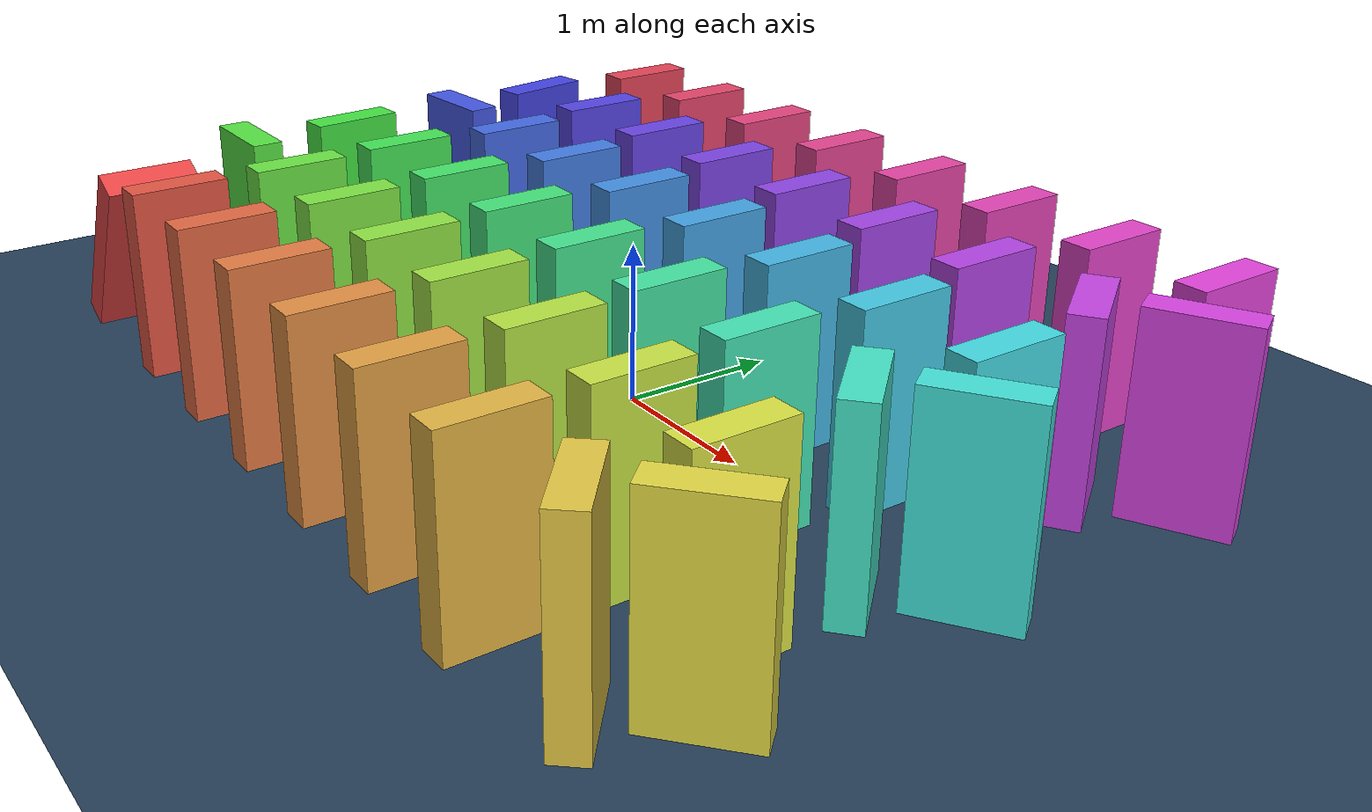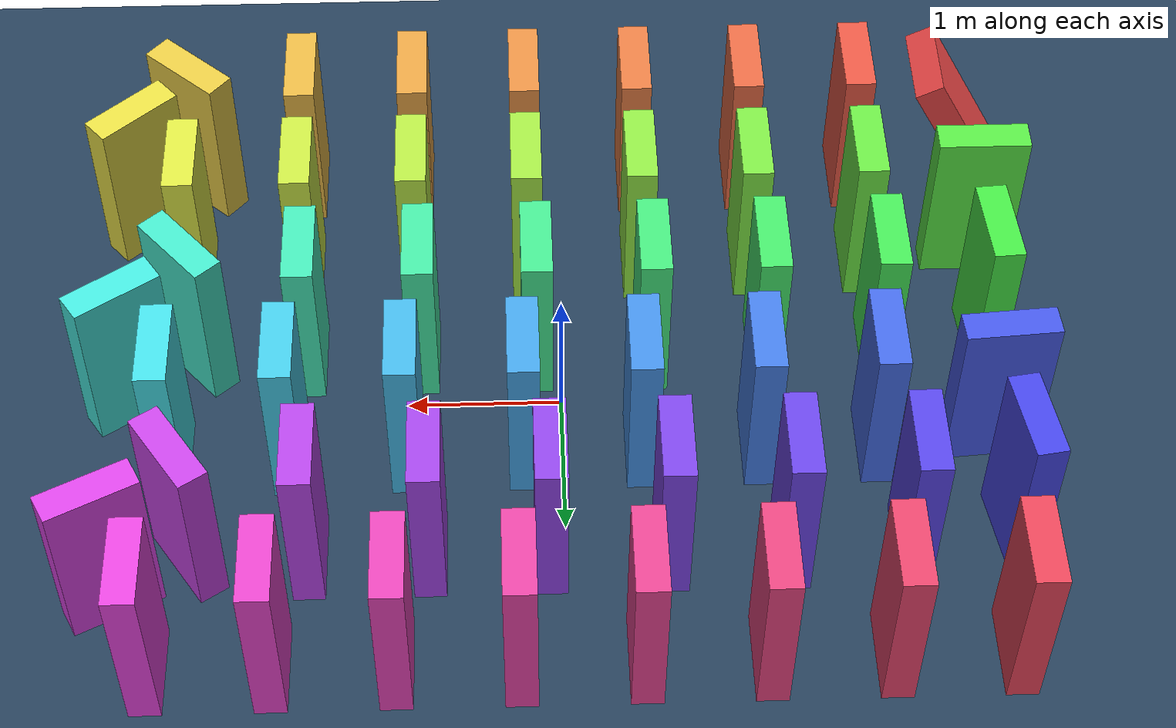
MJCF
<mujoco>
  <visual>
    <headlight diffuse="0.6 0.6 0.6" ambient="0.1 0.1 0.1" specular="0 0 0"/>
    <rgba haze="0.15 0.25 0.35 1"/>
    <global azimuth="120" elevation="-20"/>
  </visual>
  <asset>
    <texture type="skybox" builtin="gradient" rgb1="0.3 0.5 0.7" rgb2="0 0 0" width="512" height="3072"/>
    <texture type="2d" name="groundplane" builtin="checker" mark="edge" rgb1="0.2 0.3 0.4" rgb2="0.1 0.2 0.3" markrgb="0.8 0.8 0.8" width="300" height="300"/>
    <material name="groundplane" texture="groundplane" texuniform="true" texrepeat="5 5" reflectance="0.2"/>
  </asset>
  <worldbody>
    <light pos="0 0 1.5" dir="0 0 -1" directional="true"/>
    <geom name="floor" size="0 0 0.05" type="plane" material="groundplane"/>
    <body name="trigger" pos="-2.8000 -2.0000 0.5767" euler="0 28.0 0.0">
      <geom type="box" size="0.1000 0.3000 0.6000" rgba="0.900 0.270 0.270 1"/>
      <freejoint/>
    </body>
    <body name="domino_001" pos="-2.0500 -2.0000 0.6000" euler="0 0.0 0.0">
      <geom type="box" size="0.1000 0.3000 0.6000" rgba="0.900 0.344 0.270 1"/>
      <freejoint/>
    </body>
    <body name="domino_002" pos="-1.3000 -2.0000 0.6000" euler="0 0.0 0.0">
      <geom type="box" size="0.1000 0.3000 0.6000" rgba="0.900 0.418 0.270 1"/>
      <freejoint/>
    </body>
    <body name="domino_003" pos="-0.5500 -2.0000 0.6000" euler="0 0.0 0.0">
      <geom type="box" size="0.1000 0.3000 0.6000" rgba="0.900 0.492 0.270 1"/>
      <freejoint/>
    </body>
    <body name="domino_004" pos="0.2000 -2.0000 0.6000" euler="0 0.0 0.0">
      <geom type="box" size="0.1000 0.3000 0.6000" rgba="0.900 0.566 0.270 1"/>
      <freejoint/>
    </body>
    <body name="domino_005" pos="0.9500 -2.0000 0.6000" euler="0 0.0 0.0">
      <geom type="box" size="0.1000 0.3000 0.6000" rgba="0.900 0.640 0.270 1"/>
      <freejoint/>
    </body>
    <body name="domino_006" pos="1.7000 -2.0000 0.6000" euler="0 0.0 0.0">
      <geom type="box" size="0.1000 0.3000 0.6000" rgba="0.900 0.714 0.270 1"/>
      <freejoint/>
    </body>
    <body name="domino_007" pos="2.4500 -2.0000 0.6000" euler="0 0.0 48.8">
      <geom type="box" size="0.1000 0.3000 0.6000" rgba="0.900 0.788 0.270 1"/>
      <freejoint/>
    </body>
    <body name="domino_008" pos="2.8000 -1.6000 0.6000" euler="0 0.0 131.2">
      <geom type="box" size="0.1000 0.3000 0.6000" rgba="0.900 0.862 0.270 1"/>
      <freejoint/>
    </body>
    <body name="domino_009" pos="2.4500 -1.2000 0.6000" euler="0 0.0 180.0">
      <geom type="box" size="0.1000 0.3000 0.6000" rgba="0.864 0.900 0.270 1"/>
      <freejoint/>
    </body>
    <body name="domino_010" pos="1.7000 -1.2000 0.6000" euler="0 0.0 180.0">
      <geom type="box" size="0.1000 0.3000 0.6000" rgba="0.790 0.900 0.270 1"/>
      <freejoint/>
    </body>
    <body name="domino_011" pos="0.9500 -1.2000 0.6000" euler="0 0.0 180.0">
      <geom type="box" size="0.1000 0.3000 0.6000" rgba="0.716 0.900 0.270 1"/>
      <freejoint/>
    </body>
    <body name="domino_012" pos="0.2000 -1.2000 0.6000" euler="0 0.0 180.0">
      <geom type="box" size="0.1000 0.3000 0.6000" rgba="0.642 0.900 0.270 1"/>
      <freejoint/>
    </body>
    <body name="domino_013" pos="-0.5500 -1.2000 0.6000" euler="0 0.0 180.0">
      <geom type="box" size="0.1000 0.3000 0.6000" rgba="0.568 0.900 0.270 1"/>
      <freejoint/>
    </body>
    <body name="domino_014" pos="-1.3000 -1.2000 0.6000" euler="0 0.0 180.0">
      <geom type="box" size="0.1000 0.3000 0.6000" rgba="0.494 0.900 0.270 1"/>
      <freejoint/>
    </body>
    <body name="domino_015" pos="-2.0500 -1.2000 0.6000" euler="0 0.0 180.0">
      <geom type="box" size="0.1000 0.3000 0.6000" rgba="0.420 0.900 0.270 1"/>
      <freejoint/>
    </body>
    <body name="domino_016" pos="-2.8000 -1.2000 0.6000" euler="0 0.0 90.0">
      <geom type="box" size="0.1000 0.3000 0.6000" rgba="0.346 0.900 0.270 1"/>
      <freejoint/>
    </body>
    <body name="domino_017" pos="-2.8000 -0.4500 0.6000" euler="0 0.0 4.1">
      <geom type="box" size="0.1000 0.3000 0.6000" rgba="0.272 0.900 0.270 1"/>
      <freejoint/>
    </body>
    <body name="domino_018" pos="-2.1000 -0.4000 0.6000" euler="0 0.0 0.0">
      <geom type="box" size="0.1000 0.3000 0.6000" rgba="0.270 0.900 0.342 1"/>
      <freejoint/>
    </body>
    <body name="domino_019" pos="-1.3500 -0.4000 0.6000" euler="0 0.0 0.0">
      <geom type="box" size="0.1000 0.3000 0.6000" rgba="0.270 0.900 0.416 1"/>
      <freejoint/>
    </body>
    <body name="domino_020" pos="-0.6000 -0.4000 0.6000" euler="0 0.0 0.0">
      <geom type="box" size="0.1000 0.3000 0.6000" rgba="0.270 0.900 0.490 1"/>
      <freejoint/>
    </body>
    <body name="domino_021" pos="0.1500 -0.4000 0.6000" euler="0 0.0 0.0">
      <geom type="box" size="0.1000 0.3000 0.6000" rgba="0.270 0.900 0.565 1"/>
      <freejoint/>
    </body>
    <body name="domino_022" pos="0.9000 -0.4000 0.6000" euler="0 0.0 0.0">
      <geom type="box" size="0.1000 0.3000 0.6000" rgba="0.270 0.900 0.639 1"/>
      <freejoint/>
    </body>
    <body name="domino_023" pos="1.6500 -0.4000 0.6000" euler="0 0.0 0.0">
      <geom type="box" size="0.1000 0.3000 0.6000" rgba="0.270 0.900 0.713 1"/>
      <freejoint/>
    </body>
    <body name="domino_024" pos="2.4000 -0.4000 0.6000" euler="0 0.0 41.2">
      <geom type="box" size="0.1000 0.3000 0.6000" rgba="0.270 0.900 0.787 1"/>
      <freejoint/>
    </body>
    <body name="domino_025" pos="2.8000 -0.0500 0.6000" euler="0 0.0 123.7">
      <geom type="box" size="0.1000 0.3000 0.6000" rgba="0.270 0.900 0.861 1"/>
      <freejoint/>
    </body>
    <body name="domino_026" pos="2.5000 0.4000 0.6000" euler="0 0.0 180.0">
      <geom type="box" size="0.1000 0.3000 0.6000" rgba="0.270 0.865 0.900 1"/>
      <freejoint/>
    </body>
    <body name="domino_027" pos="1.7500 0.4000 0.6000" euler="0 0.0 180.0">
      <geom type="box" size="0.1000 0.3000 0.6000" rgba="0.270 0.791 0.900 1"/>
      <freejoint/>
    </body>
    <body name="domino_028" pos="1.0000 0.4000 0.6000" euler="0 0.0 180.0">
      <geom type="box" size="0.1000 0.3000 0.6000" rgba="0.270 0.717 0.900 1"/>
      <freejoint/>
    </body>
    <body name="domino_029" pos="0.2500 0.4000 0.6000" euler="0 0.0 180.0">
      <geom type="box" size="0.1000 0.3000 0.6000" rgba="0.270 0.643 0.900 1"/>
      <freejoint/>
    </body>
    <body name="domino_030" pos="-0.5000 0.4000 0.6000" euler="0 0.0 180.0">
      <geom type="box" size="0.1000 0.3000 0.6000" rgba="0.270 0.569 0.900 1"/>
      <freejoint/>
    </body>
    <body name="domino_031" pos="-1.2500 0.4000 0.6000" euler="0 0.0 180.0">
      <geom type="box" size="0.1000 0.3000 0.6000" rgba="0.270 0.495 0.900 1"/>
      <freejoint/>
    </body>
    <body name="domino_032" pos="-2.0000 0.4000 0.6000" euler="0 0.0 180.0">
      <geom type="box" size="0.1000 0.3000 0.6000" rgba="0.270 0.421 0.900 1"/>
      <freejoint/>
    </body>
    <body name="domino_033" pos="-2.7500 0.4000 0.6000" euler="0 0.0 94.1">
      <geom type="box" size="0.1000 0.3000 0.6000" rgba="0.270 0.347 0.900 1"/>
      <freejoint/>
    </body>
    <body name="domino_034" pos="-2.8000 1.1000 0.6000" euler="0 0.0 8.7">
      <geom type="box" size="0.1000 0.3000 0.6000" rgba="0.270 0.273 0.900 1"/>
      <freejoint/>
    </body>
    <body name="domino_035" pos="-2.1500 1.2000 0.6000" euler="0 0.0 0.0">
      <geom type="box" size="0.1000 0.3000 0.6000" rgba="0.341 0.270 0.900 1"/>
      <freejoint/>
    </body>
    <body name="domino_036" pos="-1.4000 1.2000 0.6000" euler="0 0.0 0.0">
      <geom type="box" size="0.1000 0.3000 0.6000" rgba="0.415 0.270 0.900 1"/>
      <freejoint/>
    </body>
    <body name="domino_037" pos="-0.6500 1.2000 0.6000" euler="0 0.0 0.0">
      <geom type="box" size="0.1000 0.3000 0.6000" rgba="0.489 0.270 0.900 1"/>
      <freejoint/>
    </body>
    <body name="domino_038" pos="0.1000 1.2000 0.6000" euler="0 0.0 0.0">
      <geom type="box" size="0.1000 0.3000 0.6000" rgba="0.563 0.270 0.900 1"/>
      <freejoint/>
    </body>
    <body name="domino_039" pos="0.8500 1.2000 0.6000" euler="0 0.0 0.0">
      <geom type="box" size="0.1000 0.3000 0.6000" rgba="0.637 0.270 0.900 1"/>
      <freejoint/>
    </body>
    <body name="domino_040" pos="1.6000 1.2000 0.6000" euler="0 0.0 0.0">
      <geom type="box" size="0.1000 0.3000 0.6000" rgba="0.711 0.270 0.900 1"/>
      <freejoint/>
    </body>
    <body name="domino_041" pos="2.3500 1.2000 0.6000" euler="0 0.0 33.7">
      <geom type="box" size="0.1000 0.3000 0.6000" rgba="0.785 0.270 0.900 1"/>
      <freejoint/>
    </body>
    <body name="domino_042" pos="2.8000 1.5000 0.6000" euler="0 0.0 116.6">
      <geom type="box" size="0.1000 0.3000 0.6000" rgba="0.859 0.270 0.900 1"/>
      <freejoint/>
    </body>
    <body name="domino_043" pos="2.5500 2.0000 0.6000" euler="0 0.0 180.0">
      <geom type="box" size="0.1000 0.3000 0.6000" rgba="0.900 0.270 0.867 1"/>
      <freejoint/>
    </body>
    <body name="domino_044" pos="1.8000 2.0000 0.6000" euler="0 0.0 180.0">
      <geom type="box" size="0.1000 0.3000 0.6000" rgba="0.900 0.270 0.793 1"/>
      <freejoint/>
    </body>
    <body name="domino_045" pos="1.0500 2.0000 0.6000" euler="0 0.0 180.0">
      <geom type="box" size="0.1000 0.3000 0.6000" rgba="0.900 0.270 0.719 1"/>
      <freejoint/>
    </body>
    <body name="domino_046" pos="0.3000 2.0000 0.6000" euler="0 0.0 180.0">
      <geom type="box" size="0.1000 0.3000 0.6000" rgba="0.900 0.270 0.645 1"/>
      <freejoint/>
    </body>
    <body name="domino_047" pos="-0.4500 2.0000 0.6000" euler="0 0.0 180.0">
      <geom type="box" size="0.1000 0.3000 0.6000" rgba="0.900 0.270 0.571 1"/>
      <freejoint/>
    </body>
    <body name="domino_048" pos="-1.2000 2.0000 0.6000" euler="0 0.0 180.0">
      <geom type="box" size="0.1000 0.3000 0.6000" rgba="0.900 0.270 0.497 1"/>
      <freejoint/>
    </body>
    <body name="domino_049" pos="-1.9500 2.0000 0.6000" euler="0 0.0 180.0">
      <geom type="box" size="0.1000 0.3000 0.6000" rgba="0.900 0.270 0.423 1"/>
      <freejoint/>
    </body>
    <body name="domino_050" pos="-2.7000 2.0000 0.6000" euler="0 0.0 180.0">
      <geom type="box" size="0.1000 0.3000 0.6000" rgba="0.900 0.270 0.349 1"/>
      <freejoint/>
    </body>
  </worldbody>
</mujoco>
